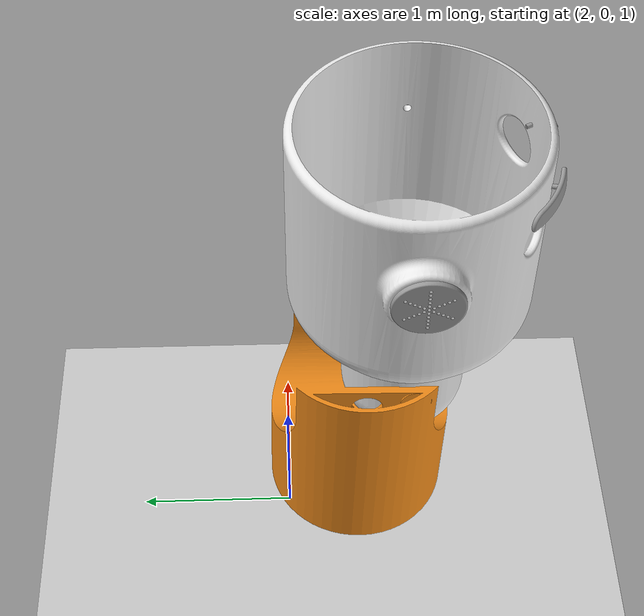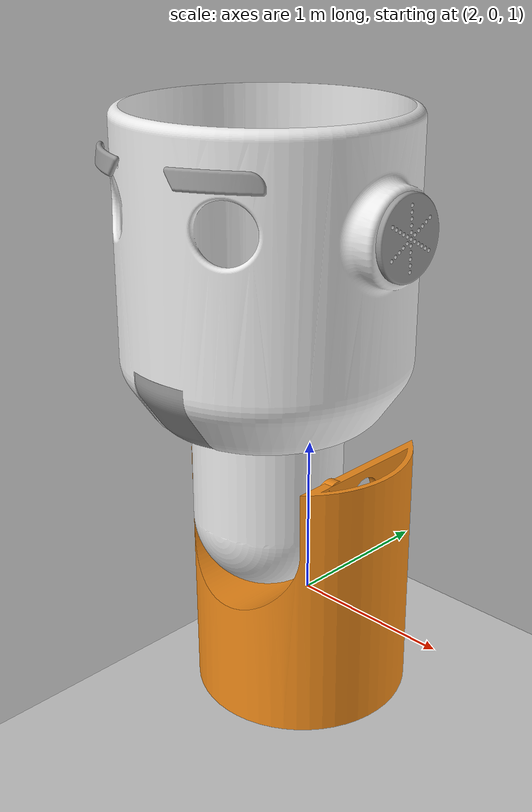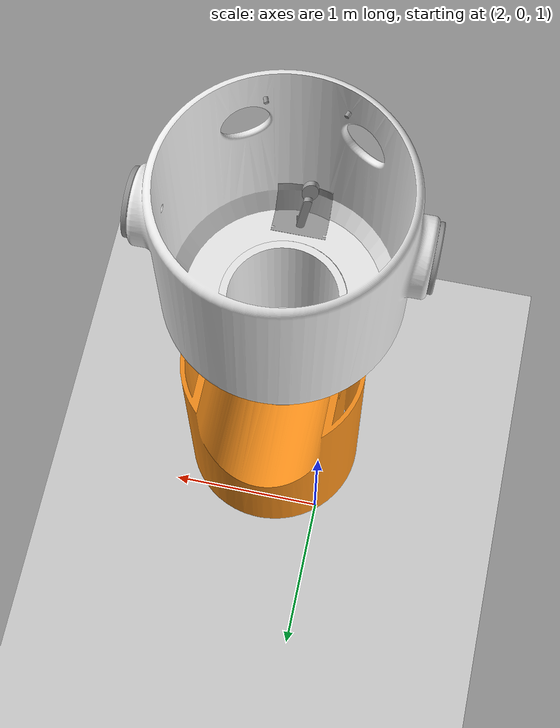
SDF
<sdf version="1.5">
 <world name="default">
  <light name="sun" type="directional">
   <pose>0 0 10 0 -0 0</pose>
   <diffuse>0.8 0.8 0.8 1</diffuse>
   <specular>0.2 0.2 0.2 1</specular>
   <attenuation>
    <range>1000</range>
    <constant>0.9</constant>
    <linear>0.01</linear>
    <quadratic>0.001</quadratic>
   </attenuation>
   <direction>-0.5 0.1 -0.9</direction>
  </light>
  <model name="ground_plane">
   <static>1</static>
   <link name="link">
    <collision name="collision">
     <geometry><plane><normal>0 0 1</normal><size>100 100</size></plane></geometry>
     <surface><friction><ode><mu>100</mu><mu2>50</mu2></ode></friction></surface>
    </collision>
    <visual name="visual">
     <cast_shadows>0</cast_shadows>
     <geometry><plane><normal>0 0 1</normal><size>100 100</size></plane></geometry>
     <material>
      <script><uri>file://media/materials/scripts/gazebo.material</uri><name>Gazebo/Grey</name></script>
     </material>
    </visual>
   </link>
  </model>
  <physics name="default_physics" default="0" type="ode">
   <max_step_size>0.001</max_step_size>
   <real_time_factor>1</real_time_factor>
   <real_time_update_rate>1000</real_time_update_rate>
   <gravity>0 0 -9.8</gravity>
   <magnetic_field>5.5645e-06 2.28758e-05 -4.23884e-05</magnetic_field>
  </physics>
  <scene><ambient>0.4 0.4 0.4 1</ambient><background>0.7 0.7 0.7 1</background><shadows>1</shadows></scene>
  <spherical_coordinates>
   <surface_model>EARTH_WGS84</surface_model>
   <latitude_deg>0</latitude_deg>
   <longitude_deg>0</longitude_deg>
   <elevation>0</elevation>
   <heading_deg>0</heading_deg>
  </spherical_coordinates>
  <model name="HEAD">
   <pose>0 0 2 0 0 0</pose>
   <link name="FACE">
    <pose>1.5371 -1.50745 0.5 0 -0 0</pose>
    <inertial>
     <mass>0.47386924</mass>
     <inertia>
      <ixx>0.00458492</ixx>
      <iyy>0.00475384</iyy>
      <izz>0.00222689</izz>
      <ixy>0</ixy>
      <ixz>0</ixz>
      <iyz>0.00007495</iyz>
     </inertia>
    </inertial>
    <collision name="collision">
     <geometry>
      <box><size>0.17 0.15 0.16</size></box>
      <mesh>
       <uri>/media/trannguyenphuongtrinh_eeit13/01D0512D26AB19B0/ROBOT/retry2/face/Face.STL</uri>
       <scale>0.01 0.01 0.01</scale>
      </mesh>
     </geometry>
    </collision>
    <visual name="custom_-27_visual">
     <geometry>
      <mesh>
       <uri>/media/trannguyenphuongtrinh_eeit13/01D0512D26AB19B0/ROBOT/retry2/face/Face.STL</uri>
       <scale>0.01 0.01 0.01</scale>
      </mesh>
     </geometry>
     <material>
      <script><uri>file://media/materials/scripts/gazebo.material</uri><name>Gazebo/White</name></script>
     </material>
    </visual>
   </link>
   <link name="EARcap_right">
    <pose>1.510000 -0.967000 1.425000 1.56 0.000001 1.575000</pose>
    <inertial>
     <mass>0.00532927</mass>
     <inertia>
      <ixx>0.00000069</ixx>
      <iyy>0.00000069</iyy>
      <izz>0.00000127</izz>
      <ixy>0</ixy>
      <ixz>0</ixz>
      <iyz>0</iyz>
     </inertia>
    </inertial>
    <collision name="defaultModel_0::custom_0_collision">
     <geometry>
      <box><size>0.041 0.041 0.008</size></box>
      <mesh>
       <uri>/media/trannguyenphuongtrinh_eeit13/01D0512D26AB19B0/ROBOT/retry2/ear/ear_cap.STL</uri>
       <scale>0.01 0.01 0.01</scale>
      </mesh>
     </geometry>
    </collision>
    <visual name="custom_0_visual">
     <geometry>
      <mesh>
       <uri>/media/trannguyenphuongtrinh_eeit13/01D0512D26AB19B0/ROBOT/retry2/ear/ear_cap.STL</uri>
       <scale>0.01 0.01 0.01</scale>
      </mesh>
     </geometry>
     <material>
      <script><uri>file://media/materials/scripts/gazebo.material</uri><name>Gazebo/Grey</name></script>
     </material>
    </visual>
   </link>
   <link name="EARcap_left">
    <pose>3.277000 -0.555000 1.430000 1.585000 -0.000001 -1.575</pose>
    <inertial>
     <mass>0.00532927</mass>
     <inertia>
      <ixx>0.00000069</ixx>
      <iyy>0.00000069</iyy>
      <izz>0.00000127</izz>
      <ixy>0</ixy>
      <ixz>0</ixz>
      <iyz>0</iyz>
     </inertia>
    </inertial>
    <collision name="defaultModel_0::custom_0_collision">
     <geometry>
      <box><size>0.041 0.041 0.008</size></box>
      <mesh>
       <uri>/media/trannguyenphuongtrinh_eeit13/01D0512D26AB19B0/ROBOT/retry2/ear/ear_cap.STL</uri>
       <scale>0.01 0.01 0.01</scale>
      </mesh>
     </geometry>
    </collision>
    <visual name="custom_0_visual">
     <geometry>
      <mesh>
       <uri>/media/trannguyenphuongtrinh_eeit13/01D0512D26AB19B0/ROBOT/retry2/ear/ear_cap.STL</uri>
       <scale>0.01 0.01 0.01</scale>
      </mesh>
     </geometry>
     <material>
      <script><uri>file://media/materials/scripts/gazebo.material</uri><name>Gazebo/Grey</name></script>
     </material>
    </visual>
   </link>
   <joint name="face_ear_left" type="screw">
    <parent>FACE</parent>
    <child>EARcap_left</child>
    <thread_pitch>0.02</thread_pitch>
    <axis><use_parent_model_frame>true</use_parent_model_frame></axis>
   </joint>
   <joint name="face_ear_right" type="screw">
    <parent>FACE</parent>
    <child>EARcap_right</child>
    <thread_pitch>0.02</thread_pitch>
    <axis><use_parent_model_frame>true</use_parent_model_frame></axis>
   </joint>
   <link name="EYEBROW_right">
    <pose>2.245000 -1.027000 1.880000 2.999999 -0.000001 0.527000</pose>
    <inertial>
     <mass>0.00141734</mass>
     <inertia>
      <ixx>0.00000549</ixx>
      <iyy>0.00000025</iyy>
      <izz>0.00000564</izz>
      <ixy>-0.00000002</ixy>
      <ixz>0</ixz>
      <iyz>0.00000044</iyz>
     </inertia>
    </inertial>
    <collision name="defaultModel_0::custom_0_collision">
     <geometry>
      <box><size>0.045 0.016 0.010</size></box>
      <mesh>
       <uri>/media/trannguyenphuongtrinh_eeit13/01D0512D26AB19B0/ROBOT/retry2/eyebrown/long-may-phai.STL</uri>
       <scale>0.01 0.01 0.01</scale>
      </mesh>
     </geometry>
    </collision>
    <visual name="custom_0_visual">
     <geometry>
      <mesh>
       <uri>/media/trannguyenphuongtrinh_eeit13/01D0512D26AB19B0/ROBOT/retry2/eyebrown/long-may-phai.STL</uri>
       <scale>0.01 0.01 0.01</scale>
      </mesh>
     </geometry>
     <material>
      <script><uri>file://media/materials/scripts/gazebo.material</uri><name>Gazebo/Grey</name></script>
     </material>
    </visual>
   </link>
   <link name="EYEBROW_left">
    <pose>2.130000 -0.800000 1.880000 3.000001 0.000002 -0.519999</pose>
    <inertial>
     <mass>0.00141734</mass>
     <inertia>
      <ixx>0.00000549</ixx>
      <iyy>0.00000025</iyy>
      <izz>0.00000564</izz>
      <ixy>-0.00000002</ixy>
      <ixz>0</ixz>
      <iyz>0.00000044</iyz>
     </inertia>
    </inertial>
    <collision name="defaultModel_0::custom_0_collision">
     <geometry>
      <box><size>0.045 0.016 0.010</size></box>
      <mesh>
       <uri>/media/trannguyenphuongtrinh_eeit13/01D0512D26AB19B0/ROBOT/retry2/eyebrown/long-may-trai.STL</uri>
       <scale>0.01 0.01 0.01</scale>
      </mesh>
     </geometry>
    </collision>
    <visual name="custom_0_visual">
     <geometry>
      <mesh>
       <uri>/media/trannguyenphuongtrinh_eeit13/01D0512D26AB19B0/ROBOT/retry2/eyebrown/long-may-trai.STL</uri>
       <scale>0.01 0.01 0.01</scale>
      </mesh>
     </geometry>
     <material>
      <script><uri>file://media/materials/scripts/gazebo.material</uri><name>Gazebo/Grey</name></script>
     </material>
    </visual>
   </link>
   <joint name="face_brow_left" type="revolute">
    <parent>FACE</parent>
    <child>EYEBROW_left</child>
    <axis><xyz>0 -1 0</xyz><limit><lower>3.14</lower><upper>3.14</upper></limit></axis>
   </joint>
   <joint name="face_brow_right" type="revolute">
    <parent>FACE</parent>
    <child>EYEBROW_right</child>
    <axis><xyz>0 -1 0</xyz><limit><lower>3.14</lower><upper>3.14</upper></limit></axis>
   </joint>
   <link name="MOUTH">
    <pose>2.213600 -1.508000 0.508000 1.566000 0 1.570000</pose>
    <inertial>
     <mass>0.00141734</mass>
     <inertia>
      <ixx>0.00000755</ixx>
      <iyy>0.00003191</iyy>
      <izz>0.00003639</izz>
      <ixy>-0.00001262</ixy>
      <ixz>0</ixz>
      <iyz>0</iyz>
     </inertia>
    </inertial>
    <collision name="defaultModel_0::custom_0_collision">
     <geometry>
      <box><size>0.03 0.039 0.035</size></box>
      <mesh>
       <uri>/media/trannguyenphuongtrinh_eeit13/01D0512D26AB19B0/ROBOT/retry2/mouth/mieng.STL</uri>
       <scale>0.01 0.01 0.01</scale>
      </mesh>
     </geometry>
    </collision>
    <visual name="custom_0_visual">
     <geometry>
      <mesh>
       <uri>/media/trannguyenphuongtrinh_eeit13/01D0512D26AB19B0/ROBOT/retry2/mouth/mieng.STL</uri>
       <scale>0.01 0.01 0.01</scale>
      </mesh>
     </geometry>
     <material>
      <script><uri>file://media/materials/scripts/gazebo.material</uri><name>Gazebo/Grey</name></script>
     </material>
    </visual>
   </link>
   <joint name="face_mouth" type="prismatic">
    <parent>FACE</parent>
    <child>MOUTH</child>
    <axis><xyz>0 -1 0</xyz><limit><lower>0</lower><upper>0.035</upper></limit></axis>
   </joint>
   <link name="MOUTH_BAR">
    <pose>2.367600 -1.329000 0.746000 1.471588 -1.424778 -2.958403</pose>
    <inertial>
     <mass>0.00065494</mass>
     <inertia><ixx>0</ixx><iyy>0.00000008</iyy><izz>0.00000007</izz><ixy>0</ixy><ixz>0</ixz><iyz>0</iyz></inertia>
    </inertial>
    <collision name="defaultModel_0::custom_0_collision">
     <geometry>
      <box><size>0.35 0.5 0.8</size></box>
      <mesh>
       <uri>/media/trannguyenphuongtrinh_eeit13/01D0512D26AB19B0/ROBOT/retry2/mouth/thanhmieng.STL</uri>
       <scale>0.01 0.01 0.01</scale>
      </mesh>
     </geometry>
    </collision>
    <visual name="custom_0_visual">
     <geometry>
      <mesh>
       <uri>/media/trannguyenphuongtrinh_eeit13/01D0512D26AB19B0/ROBOT/retry2/mouth/thanhmieng.STL</uri>
       <scale>0.01 0.01 0.01</scale>
      </mesh>
     </geometry>
     <material>
      <script><uri>file://media/materials/scripts/gazebo.material</uri><name>Gazebo/Grey</name></script>
     </material>
    </visual>
   </link>
   <joint name="mouth_mouth_bar" type="revolute">
    <parent>MOUTH</parent>
    <child>MOUTH_BAR</child>
    <axis><xyz>0 0 1</xyz><limit><lower>3.14</lower><upper>3.14</upper></limit></axis>
   </joint>
   <link name="MOUTH_REVOLUTE">
    <pose>2.298000 -1.320000 1.040000 -1.550000 -1.700000 0.080000</pose>
    <inertial>
     <mass>0.00050854</mass>
     <inertia><ixx>0</ixx><iyy>0.00000001</iyy><izz>0.00000002</izz><ixy>0</ixy><ixz>0</ixz><iyz>0</iyz></inertia>
    </inertial>
    <collision name="defaultModel_0::custom_0_collision">
     <geometry>
      <box><size>0.019 0.009 0.003</size></box>
      <mesh>
       <uri>/media/trannguyenphuongtrinh_eeit13/01D0512D26AB19B0/ROBOT/retry2/mouth/chuyendongmieng.STL</uri>
       <scale>0.01 0.01 0.01</scale>
      </mesh>
     </geometry>
    </collision>
    <visual name="custom_0_visual">
     <geometry>
      <mesh>
       <uri>/media/trannguyenphuongtrinh_eeit13/01D0512D26AB19B0/ROBOT/retry2/mouth/chuyendongmieng.STL</uri>
       <scale>0.01 0.01 0.01</scale>
      </mesh>
     </geometry>
     <material>
      <script><uri>file://media/materials/scripts/gazebo.material</uri><name>Gazebo/Grey</name></script>
     </material>
    </visual>
   </link>
   <joint name="mouth_mouth_revolute" type="revolute">
    <parent>MOUTH_BAR</parent>
    <child>MOUTH_REVOLUTE</child>
    <axis><xyz>0 0 1</xyz><limit><lower>3.14</lower><upper>3.14</upper></limit></axis>
   </joint>
   <link name="NECK">
    <pose>1.800000 -1.100000 0.280000 -3.133185 -0.020001 1.569999</pose>
    <inertial>
     <mass>0.99213580</mass>
     <inertia><ixx>0</ixx><iyy>0.00000001</iyy><izz>0.00000002</izz><ixy>0</ixy><ixz>0</ixz><iyz>0</iyz></inertia>
    </inertial>
    <kinematic>1</kinematic>
    <collision name="defaultModel_0::custom_0_collision">
     <geometry>
      <box><size>0.120 0.120 0.145</size></box>
      <mesh>
       <uri>/media/trannguyenphuongtrinh_eeit13/01D0512D26AB19B0/ROBOT/retry2/neck/neck1.STL</uri>
       <scale>0.01 0.01 0.01</scale>
      </mesh>
     </geometry>
    </collision>
    <visual name="custom_0_visual">
     <geometry>
      <mesh>
       <uri>/media/trannguyenphuongtrinh_eeit13/01D0512D26AB19B0/ROBOT/retry2/neck/neck1.STL</uri>
       <scale>0.01 0.01 0.01</scale>
      </mesh>
     </geometry>
     <material>
      <script><uri>file://media/materials/scripts/gazebo.material</uri><name>Gazebo/Orange</name></script>
     </material>
    </visual>
   </link>
   <link name="NECK_revolute">
    <pose>2.033000 -1.193000 -0.420000 0 0 0.100000</pose>
    <inertial>
     <mass>0.18407209</mass>
     <inertia>
      <ixx>0.00044369</ixx>
      <iyy>0.00044092</iyy>
      <izz>0.00019519</izz>
      <ixy>0</ixy>
      <ixz>0</ixz>
      <iyz>0</iyz>
     </inertia>
    </inertial>
    <kinematic>1</kinematic>
    <collision name="defaultModel_0::custom_0_collision">
     <geometry>
      <box><size>0.08 0.08 0.115</size></box>
      <mesh>
       <uri>/media/trannguyenphuongtrinh_eeit13/01D0512D26AB19B0/ROBOT/retry2/neck/neck2.STL</uri>
       <scale>0.01 0.01 0.01</scale>
      </mesh>
     </geometry>
    </collision>
    <visual name="custom_0_visual">
     <geometry>
      <mesh>
       <uri>/media/trannguyenphuongtrinh_eeit13/01D0512D26AB19B0/ROBOT/retry2/neck/neck2.STL</uri>
       <scale>0.01 0.01 0.01</scale>
      </mesh>
     </geometry>
     <material>
      <script><uri>file://media/materials/scripts/gazebo.material</uri><name>Gazebo/White</name></script>
     </material>
    </visual>
   </link>
   <link name="NECK_bar">
    <pose>1.955000 -0.905000 0.280000 0.000030 1.564593 0.091645</pose>
    <inertial>
     <mass>0.02114924</mass>
     <inertia>
      <ixx>0.00005913</ixx>
      <iyy>0.00005924</iyy>
      <izz>0.00000134</izz>
      <ixy>0</ixy>
      <ixz>0</ixz>
      <iyz>0</iyz>
     </inertia>
    </inertial>
    <kinematic>1</kinematic>
    <collision name="defaultModel_0::custom_0_collision">
     <geometry>
      <box><size>0.02 0.020 0.905</size></box>
      <mesh>
       <uri>/media/trannguyenphuongtrinh_eeit13/01D0512D26AB19B0/ROBOT/retry2/neck/neck3.STL</uri>
       <scale>0.01 0.01 0.01</scale>
      </mesh>
     </geometry>
    </collision>
    <visual name="custom_0_visual">
     <geometry>
      <mesh>
       <uri>/media/trannguyenphuongtrinh_eeit13/01D0512D26AB19B0/ROBOT/retry2/neck/neck3.STL</uri>
       <scale>0.01 0.01 0.01</scale>
      </mesh>
     </geometry>
     <material>
      <script><uri>file://media/materials/scripts/gazebo.material</uri><name>Gazebo/Orange</name></script>
     </material>
    </visual>
   </link>
   <joint name="neck1_neck3" type="revolute">
    <parent>NECK</parent>
    <child>NECK_bar</child>
    <axis><xyz>0 0 1</xyz><limit><lower>3.14</lower><upper>3.14</upper></limit></axis>
   </joint>
   <joint name="neck3_neck2" type="revolute">
    <parent>NECK_bar</parent>
    <child>NECK_revolute</child>
    <axis><xyz>0 0 1</xyz><limit><lower>3.14</lower><upper>3.14</upper></limit></axis>
   </joint>
   <joint name="face_neck" type="screw">
    <parent>FACE</parent>
    <child>NECK_revolute</child>
    <axis><use_parent_model_frame>true</use_parent_model_frame></axis>
   </joint>
   <static>1</static>
  </model>
 </world>
</sdf>
